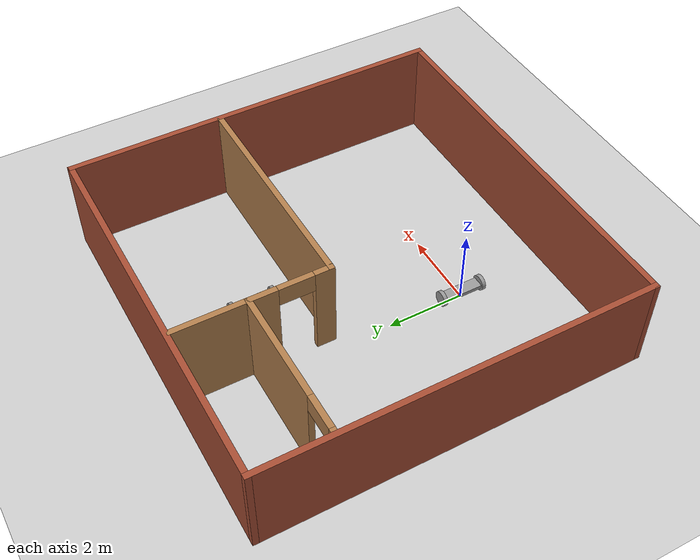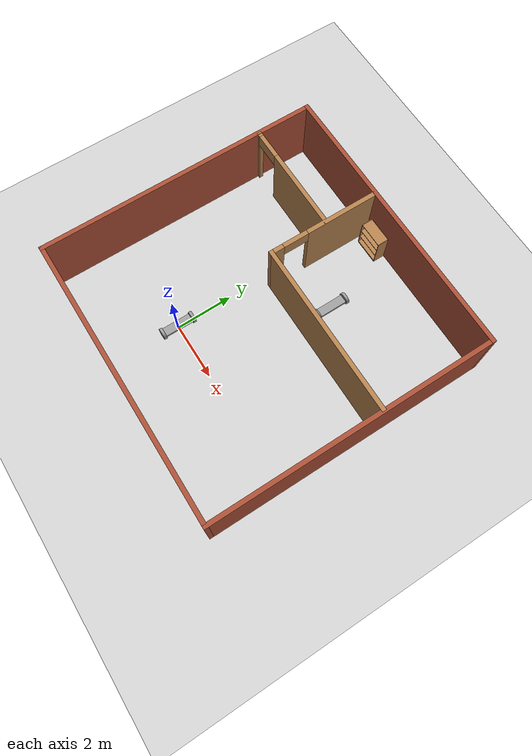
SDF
<sdf version="1.6">
 <world name="default">
  <plugin name="welcome_message" filename="libwelcome_message.so"/>
  <light name="sun" type="directional">
   <pose>0 0 10 0 -0 0</pose>
   <diffuse>0.8 0.8 0.8 1</diffuse>
   <specular>0.2 0.2 0.2 1</specular>
   <attenuation>
    <range>1000</range>
    <constant>0.9</constant>
    <linear>0.01</linear>
    <quadratic>0.001</quadratic>
   </attenuation>
   <direction>-0.5 0.1 -0.9</direction>
  </light>
  <model name="ground_plane">
   <static>1</static>
   <link name="link">
    <collision name="collision">
     <geometry><plane><normal>0 0 1</normal><size>100 100</size></plane></geometry>
     <surface><friction><ode><mu>100</mu><mu2>50</mu2></ode></friction></surface>
    </collision>
    <visual name="visual">
     <cast_shadows>0</cast_shadows>
     <geometry><plane><normal>0 0 1</normal><size>100 100</size></plane></geometry>
     <material>
      <script><uri>file://media/materials/scripts/gazebo.material</uri><name>Gazebo/Grey</name></script>
     </material>
    </visual>
   </link>
  </model>
  <gravity>0 0 -9.8</gravity>
  <magnetic_field>6e-06 2.3e-05 -4.2e-05</magnetic_field>
  <atmosphere type="adiabatic"/>
  <physics name="default_physics" default="0" type="ode">
   <max_step_size>0.001</max_step_size>
   <real_time_factor>1</real_time_factor>
   <real_time_update_rate>1000</real_time_update_rate>
  </physics>
  <scene><ambient>0.4 0.4 0.4 1</ambient><background>0.7 0.7 0.7 1</background><shadows>1</shadows></scene>
  <spherical_coordinates>
   <surface_model>EARTH_WGS84</surface_model>
   <latitude_deg>0</latitude_deg>
   <longitude_deg>0</longitude_deg>
   <elevation>0</elevation>
   <heading_deg>0</heading_deg>
  </spherical_coordinates>
  <model name="Robot">
   <link name="link_0">
    <inertial>
     <mass>1</mass>
     <inertia>
      <ixx>0.166667</ixx>
      <ixy>0</ixy>
      <ixz>0</ixz>
      <iyy>0.166667</iyy>
      <iyz>0</iyz>
      <izz>0.166667</izz>
     </inertia>
    </inertial>
    <visual name="visual">
     <geometry><box><size>0.3 1 0.1</size></box></geometry>
     <material>
      <lighting>1</lighting>
      <script><uri>file://media/materials/scripts/gazebo.material</uri><name>Gazebo/Grey</name></script>
      <shader type="pixel"><normal_map>__default__</normal_map></shader>
      <ambient>0.3 0.3 0.3 1</ambient>
      <diffuse>0.7 0.7 0.7 1</diffuse>
      <specular>0.01 0.01 0.01 1</specular>
      <emissive>0 0 0 1</emissive>
     </material>
    </visual>
    <collision name="collision">
     <geometry><box><size>0.3 1 0.1</size></box></geometry>
     <surface>
      <friction>
       <ode><mu>1</mu><mu2>1</mu2><fdir1>0 0 0</fdir1><slip1>0</slip1><slip2>0</slip2></ode>
       <torsional>
        <coefficient>1</coefficient>
        <patch_radius>0</patch_radius>
        <surface_radius>0</surface_radius>
        <use_patch_radius>1</use_patch_radius>
        <ode><slip>0</slip></ode>
       </torsional>
      </friction>
      <bounce><restitution_coefficient>0</restitution_coefficient><threshold>1e+06</threshold></bounce>
      <contact>
       <collide_without_contact>0</collide_without_contact>
       <collide_without_contact_bitmask>1</collide_without_contact_bitmask>
       <collide_bitmask>1</collide_bitmask>
       <ode>
        <soft_cfm>0</soft_cfm>
        <soft_erp>0.2</soft_erp>
        <kp>1e+13</kp>
        <kd>1</kd>
        <max_vel>0.01</max_vel>
        <min_depth>0</min_depth>
       </ode>
       <bullet>
        <split_impulse>1</split_impulse>
        <split_impulse_penetration_threshold>-0.01</split_impulse_penetration_threshold>
        <soft_cfm>0</soft_cfm>
        <soft_erp>0.2</soft_erp>
        <kp>1e+13</kp>
        <kd>1</kd>
       </bullet>
      </contact>
     </surface>
    </collision>
   </link>
   <link name="link_1">
    <pose>0 -0.550019 0 1.5707 -0 0</pose>
    <inertial>
     <mass>1</mass>
     <inertia><ixx>0.145833</ixx><ixy>0</ixy><ixz>0</ixz><iyy>0.145833</iyy><iyz>0</iyz><izz>0.125</izz></inertia>
    </inertial>
    <visual name="visual">
     <geometry><cylinder><radius>0.2</radius><length>0.1</length></cylinder></geometry>
     <material>
      <lighting>1</lighting>
      <script><uri>file://media/materials/scripts/gazebo.material</uri><name>Gazebo/Grey</name></script>
      <shader type="pixel"><normal_map>__default__</normal_map></shader>
      <ambient>0.3 0.3 0.3 1</ambient>
      <diffuse>0.7 0.7 0.7 1</diffuse>
      <specular>0.01 0.01 0.01 1</specular>
      <emissive>0 0 0 1</emissive>
     </material>
    </visual>
    <collision name="collision">
     <geometry><cylinder><radius>0.2</radius><length>0.1</length></cylinder></geometry>
     <surface>
      <friction>
       <ode><mu>1</mu><mu2>1</mu2><fdir1>0 0 0</fdir1><slip1>0</slip1><slip2>0</slip2></ode>
       <torsional>
        <coefficient>1</coefficient>
        <patch_radius>0</patch_radius>
        <surface_radius>0</surface_radius>
        <use_patch_radius>1</use_patch_radius>
        <ode><slip>0</slip></ode>
       </torsional>
      </friction>
      <bounce><restitution_coefficient>0</restitution_coefficient><threshold>1e+06</threshold></bounce>
      <contact>
       <collide_without_contact>0</collide_without_contact>
       <collide_without_contact_bitmask>1</collide_without_contact_bitmask>
       <collide_bitmask>1</collide_bitmask>
       <ode>
        <soft_cfm>0</soft_cfm>
        <soft_erp>0.2</soft_erp>
        <kp>1e+13</kp>
        <kd>1</kd>
        <max_vel>0.01</max_vel>
        <min_depth>0</min_depth>
       </ode>
       <bullet>
        <split_impulse>1</split_impulse>
        <split_impulse_penetration_threshold>-0.01</split_impulse_penetration_threshold>
        <soft_cfm>0</soft_cfm>
        <soft_erp>0.2</soft_erp>
        <kp>1e+13</kp>
        <kd>1</kd>
       </bullet>
      </contact>
     </surface>
    </collision>
   </link>
   <link name="link_1_clone">
    <pose>0 0.550019 0 1.5707 -0 0</pose>
    <inertial>
     <mass>1</mass>
     <inertia><ixx>0.145833</ixx><ixy>0</ixy><ixz>0</ixz><iyy>0.145833</iyy><iyz>0</iyz><izz>0.125</izz></inertia>
    </inertial>
    <visual name="visual">
     <geometry><cylinder><radius>0.2</radius><length>0.1</length></cylinder></geometry>
     <material>
      <lighting>1</lighting>
      <script><uri>file://media/materials/scripts/gazebo.material</uri><name>Gazebo/Grey</name></script>
      <shader type="pixel"><normal_map>__default__</normal_map></shader>
      <ambient>0.3 0.3 0.3 1</ambient>
      <diffuse>0.7 0.7 0.7 1</diffuse>
      <specular>0.01 0.01 0.01 1</specular>
      <emissive>0 0 0 1</emissive>
     </material>
    </visual>
    <collision name="collision">
     <geometry><cylinder><radius>0.2</radius><length>0.1</length></cylinder></geometry>
     <surface>
      <friction>
       <ode><mu>1</mu><mu2>1</mu2><fdir1>0 0 0</fdir1><slip1>0</slip1><slip2>0</slip2></ode>
       <torsional>
        <coefficient>1</coefficient>
        <patch_radius>0</patch_radius>
        <surface_radius>0</surface_radius>
        <use_patch_radius>1</use_patch_radius>
        <ode><slip>0</slip></ode>
       </torsional>
      </friction>
      <bounce><restitution_coefficient>0</restitution_coefficient><threshold>1e+06</threshold></bounce>
      <contact>
       <collide_without_contact>0</collide_without_contact>
       <collide_without_contact_bitmask>1</collide_without_contact_bitmask>
       <collide_bitmask>1</collide_bitmask>
       <ode>
        <soft_cfm>0</soft_cfm>
        <soft_erp>0.2</soft_erp>
        <kp>1e+13</kp>
        <kd>1</kd>
        <max_vel>0.01</max_vel>
        <min_depth>0</min_depth>
       </ode>
       <bullet>
        <split_impulse>1</split_impulse>
        <split_impulse_penetration_threshold>-0.01</split_impulse_penetration_threshold>
        <soft_cfm>0</soft_cfm>
        <soft_erp>0.2</soft_erp>
        <kp>1e+13</kp>
        <kd>1</kd>
       </bullet>
      </contact>
     </surface>
    </collision>
   </link>
   <joint name="link_0_JOINT_1" type="revolute">
    <parent>link_0</parent>
    <child>link_1</child>
    <axis>
     <xyz>0 0 1</xyz>
     <use_parent_model_frame>0</use_parent_model_frame>
     <limit>
      <lower>-1.79769e+308</lower>
      <upper>1.79769e+308</upper>
      <effort>-1</effort>
      <velocity>-1</velocity>
     </limit>
     <dynamics>
      <spring_reference>0</spring_reference>
      <spring_stiffness>0</spring_stiffness>
      <damping>0</damping>
      <friction>0</friction>
     </dynamics>
    </axis>
    <physics>
     <ode><limit><cfm>0</cfm><erp>0.2</erp></limit><suspension><cfm>0</cfm><erp>0.2</erp></suspension></ode>
    </physics>
   </joint>
   <joint name="link_0_JOINT_2" type="revolute">
    <parent>link_0</parent>
    <child>link_1_clone</child>
    <axis>
     <xyz>0 0 1</xyz>
     <use_parent_model_frame>0</use_parent_model_frame>
     <limit>
      <lower>-1.79769e+308</lower>
      <upper>1.79769e+308</upper>
      <effort>-1</effort>
      <velocity>-1</velocity>
     </limit>
     <dynamics>
      <spring_reference>0</spring_reference>
      <spring_stiffness>0</spring_stiffness>
      <damping>0</damping>
      <friction>0</friction>
     </dynamics>
    </axis>
    <physics>
     <ode><limit><cfm>0</cfm><erp>0.2</erp></limit><suspension><cfm>0</cfm><erp>0.2</erp></suspension></ode>
    </physics>
   </joint>
   <static>0</static>
   <pose>0 0 0.200005 0 -0 0</pose>
  </model>
  <model name="Building">
   <pose>1.34162 2.41675 0.002795 0 -0 0</pose>
   <link name="Wall_10">
    <pose>-0.987448 2.9137 0 0 0 -1.5708</pose>
    <visual name="Wall_10_Visual_0">
     <pose>-0.702002 0 1.25 0 -0 0</pose>
     <geometry><box><size>2.59599 0.15 2.5</size></box></geometry>
     <material>
      <script><uri>file://media/materials/scripts/gazebo.material</uri><name>Gazebo/Wood</name></script>
      <ambient>1 1 1 1</ambient>
     </material>
     <meta><layer>0</layer></meta>
    </visual>
    <collision name="Wall_10_Collision_0">
     <geometry><box><size>2.59599 0.15 2.5</size></box></geometry>
     <pose>-0.702002 0 1.25 0 -0 0</pose>
    </collision>
    <visual name="Wall_10_Visual_1">
     <pose>1.748 0 1.25 0 -0 0</pose>
     <geometry><box><size>0.504005 0.15 2.5</size></box></geometry>
     <material>
      <script><uri>file://media/materials/scripts/gazebo.material</uri><name>Gazebo/Wood</name></script>
      <ambient>1 1 1 1</ambient>
     </material>
     <meta><layer>0</layer></meta>
    </visual>
    <collision name="Wall_10_Collision_1">
     <geometry><box><size>0.504005 0.15 2.5</size></box></geometry>
     <pose>1.748 0 1.25 0 -0 0</pose>
    </collision>
    <visual name="Wall_10_Visual_2">
     <pose>1.046 0 2.25 0 -0 0</pose>
     <geometry><box><size>0.9 0.15 0.5</size></box></geometry>
     <material>
      <script><uri>file://media/materials/scripts/gazebo.material</uri><name>Gazebo/Wood</name></script>
      <ambient>1 1 1 1</ambient>
     </material>
     <meta><layer>0</layer></meta>
    </visual>
    <collision name="Wall_10_Collision_2">
     <geometry><box><size>0.9 0.15 0.5</size></box></geometry>
     <pose>1.046 0 2.25 0 -0 0</pose>
    </collision>
   </link>
   <link name="Wall_11">
    <collision name="Wall_11_Collision">
     <geometry><box><size>6 0.15 2.5</size></box></geometry>
     <pose>0 0 1.25 0 -0 0</pose>
    </collision>
    <visual name="Wall_11_Visual">
     <pose>0 0 1.25 0 -0 0</pose>
     <geometry><box><size>6 0.15 2.5</size></box></geometry>
     <material>
      <script><uri>file://media/materials/scripts/gazebo.material</uri><name>Gazebo/Wood</name></script>
      <ambient>1 1 1 1</ambient>
     </material>
     <meta><layer>0</layer></meta>
    </visual>
    <pose>1.93755 0.988703 0 0 -0 0</pose>
   </link>
   <link name="Wall_13">
    <pose>-2.92834 3.01216 0 0 -0 0</pose>
    <visual name="Wall_13_Visual_0">
     <pose>-1.91609 0 1.25 0 -0 0</pose>
     <geometry><box><size>0.167821 0.15 2.5</size></box></geometry>
     <material>
      <script><uri>file://media/materials/scripts/gazebo.material</uri><name>Gazebo/Wood</name></script>
      <ambient>1 1 1 1</ambient>
     </material>
     <meta><layer>0</layer></meta>
    </visual>
    <collision name="Wall_13_Collision_0">
     <geometry><box><size>0.167821 0.15 2.5</size></box></geometry>
     <pose>-1.91609 0 1.25 0 -0 0</pose>
    </collision>
    <visual name="Wall_13_Visual_1">
     <pose>0.53391 0 1.25 0 -0 0</pose>
     <geometry><box><size>2.93218 0.15 2.5</size></box></geometry>
     <material>
      <script><uri>file://media/materials/scripts/gazebo.material</uri><name>Gazebo/Wood</name></script>
      <ambient>1 1 1 1</ambient>
     </material>
     <meta><layer>0</layer></meta>
    </visual>
    <collision name="Wall_13_Collision_1">
     <geometry><box><size>2.93218 0.15 2.5</size></box></geometry>
     <pose>0.53391 0 1.25 0 -0 0</pose>
    </collision>
    <visual name="Wall_13_Visual_2">
     <pose>-1.38218 0 2.25 0 -0 0</pose>
     <geometry><box><size>0.9 0.15 0.5</size></box></geometry>
     <material>
      <script><uri>file://media/materials/scripts/gazebo.material</uri><name>Gazebo/Wood</name></script>
      <ambient>1 1 1 1</ambient>
     </material>
     <meta><layer>0</layer></meta>
    </visual>
    <collision name="Wall_13_Collision_2">
     <geometry><box><size>0.9 0.15 0.5</size></box></geometry>
     <pose>-1.38218 0 2.25 0 -0 0</pose>
    </collision>
   </link>
   <link name="Wall_2">
    <collision name="Wall_2_Collision">
     <geometry><box><size>10 0.15 2.5</size></box></geometry>
     <pose>0 0 1.25 0 -0 0</pose>
    </collision>
    <visual name="Wall_2_Visual">
     <pose>0 0 1.25 0 -0 0</pose>
     <geometry><box><size>10 0.15 2.5</size></box></geometry>
     <material>
      <script><uri>file://media/materials/scripts/gazebo.material</uri><name>Gazebo/Bricks</name></script>
      <ambient>0 0.333333 0.498039 1</ambient>
     </material>
     <meta><layer>0</layer></meta>
    </visual>
    <pose>0 4.93368 0 0 -0 2.9e-05</pose>
   </link>
   <link name="Wall_3">
    <collision name="Wall_3_Collision">
     <geometry><box><size>10 0.15 2.5</size></box></geometry>
     <pose>0 0 1.25 0 -0 0</pose>
    </collision>
    <visual name="Wall_3_Visual">
     <pose>0 0 1.25 0 -0 0</pose>
     <geometry><box><size>10 0.15 2.5</size></box></geometry>
     <material>
      <script><uri>file://media/materials/scripts/gazebo.material</uri><name>Gazebo/Bricks</name></script>
      <ambient>0 0.333333 0.498039 1</ambient>
     </material>
     <meta><layer>0</layer></meta>
    </visual>
    <pose>4.92497 -0.008908 0 0 0 -1.5708</pose>
   </link>
   <link name="Wall_5">
    <collision name="Wall_5_Collision">
     <geometry><box><size>10 0.15 2.5</size></box></geometry>
     <pose>0 0 1.25 0 -0 0</pose>
    </collision>
    <visual name="Wall_5_Visual">
     <pose>0 0 1.25 0 -0 0</pose>
     <geometry><box><size>10 0.15 2.5</size></box></geometry>
     <material>
      <script><uri>file://media/materials/scripts/gazebo.material</uri><name>Gazebo/Bricks</name></script>
      <ambient>0 0.333333 0.498039 1</ambient>
     </material>
     <meta><layer>0</layer></meta>
    </visual>
    <pose>0 -4.93368 0 0 -0 3.14155</pose>
   </link>
   <link name="Wall_7">
    <collision name="Wall_7_Collision">
     <geometry><box><size>10.0177 0.15 2.5</size></box></geometry>
     <pose>0 0 1.25 0 -0 0</pose>
    </collision>
    <visual name="Wall_7_Visual">
     <pose>0 0 1.25 0 -0 0</pose>
     <geometry><box><size>10.0177 0.15 2.5</size></box></geometry>
     <material>
      <script><uri>file://media/materials/scripts/gazebo.material</uri><name>Gazebo/Bricks</name></script>
      <ambient>0 0.333333 0.498039 1</ambient>
     </material>
     <meta><layer>0</layer></meta>
    </visual>
    <pose>-4.92497 4.3e-05 0 0 -0 1.5708</pose>
   </link>
   <static>1</static>
  </model>
  <model name="Robot_0">
   <link name="link_0">
    <inertial>
     <mass>1</mass>
     <inertia>
      <ixx>0.166667</ixx>
      <ixy>0</ixy>
      <ixz>0</ixz>
      <iyy>0.166667</iyy>
      <iyz>0</iyz>
      <izz>0.166667</izz>
     </inertia>
    </inertial>
    <visual name="visual">
     <geometry><box><size>0.3 1 0.1</size></box></geometry>
     <material>
      <lighting>1</lighting>
      <script><uri>file://media/materials/scripts/gazebo.material</uri><name>Gazebo/Grey</name></script>
      <shader type="pixel"><normal_map>__default__</normal_map></shader>
      <ambient>0.3 0.3 0.3 1</ambient>
      <diffuse>0.7 0.7 0.7 1</diffuse>
      <specular>0.01 0.01 0.01 1</specular>
      <emissive>0 0 0 1</emissive>
     </material>
    </visual>
    <collision name="collision">
     <geometry><box><size>0.3 1 0.1</size></box></geometry>
     <surface>
      <friction>
       <ode><mu>1</mu><mu2>1</mu2><fdir1>0 0 0</fdir1><slip1>0</slip1><slip2>0</slip2></ode>
       <torsional>
        <coefficient>1</coefficient>
        <patch_radius>0</patch_radius>
        <surface_radius>0</surface_radius>
        <use_patch_radius>1</use_patch_radius>
        <ode><slip>0</slip></ode>
       </torsional>
      </friction>
      <bounce><restitution_coefficient>0</restitution_coefficient><threshold>1e+06</threshold></bounce>
      <contact>
       <collide_without_contact>0</collide_without_contact>
       <collide_without_contact_bitmask>1</collide_without_contact_bitmask>
       <collide_bitmask>1</collide_bitmask>
       <ode>
        <soft_cfm>0</soft_cfm>
        <soft_erp>0.2</soft_erp>
        <kp>1e+13</kp>
        <kd>1</kd>
        <max_vel>0.01</max_vel>
        <min_depth>0</min_depth>
       </ode>
       <bullet>
        <split_impulse>1</split_impulse>
        <split_impulse_penetration_threshold>-0.01</split_impulse_penetration_threshold>
        <soft_cfm>0</soft_cfm>
        <soft_erp>0.2</soft_erp>
        <kp>1e+13</kp>
        <kd>1</kd>
       </bullet>
      </contact>
     </surface>
    </collision>
   </link>
   <link name="link_1">
    <pose>0 -0.550019 0 1.5707 -0 0</pose>
    <inertial>
     <mass>1</mass>
     <inertia><ixx>0.145833</ixx><ixy>0</ixy><ixz>0</ixz><iyy>0.145833</iyy><iyz>0</iyz><izz>0.125</izz></inertia>
    </inertial>
    <visual name="visual">
     <geometry><cylinder><radius>0.2</radius><length>0.1</length></cylinder></geometry>
     <material>
      <lighting>1</lighting>
      <script><uri>file://media/materials/scripts/gazebo.material</uri><name>Gazebo/Grey</name></script>
      <shader type="pixel"><normal_map>__default__</normal_map></shader>
      <ambient>0.3 0.3 0.3 1</ambient>
      <diffuse>0.7 0.7 0.7 1</diffuse>
      <specular>0.01 0.01 0.01 1</specular>
      <emissive>0 0 0 1</emissive>
     </material>
    </visual>
    <collision name="collision">
     <geometry><cylinder><radius>0.2</radius><length>0.1</length></cylinder></geometry>
     <surface>
      <friction>
       <ode><mu>1</mu><mu2>1</mu2><fdir1>0 0 0</fdir1><slip1>0</slip1><slip2>0</slip2></ode>
       <torsional>
        <coefficient>1</coefficient>
        <patch_radius>0</patch_radius>
        <surface_radius>0</surface_radius>
        <use_patch_radius>1</use_patch_radius>
        <ode><slip>0</slip></ode>
       </torsional>
      </friction>
      <bounce><restitution_coefficient>0</restitution_coefficient><threshold>1e+06</threshold></bounce>
      <contact>
       <collide_without_contact>0</collide_without_contact>
       <collide_without_contact_bitmask>1</collide_without_contact_bitmask>
       <collide_bitmask>1</collide_bitmask>
       <ode>
        <soft_cfm>0</soft_cfm>
        <soft_erp>0.2</soft_erp>
        <kp>1e+13</kp>
        <kd>1</kd>
        <max_vel>0.01</max_vel>
        <min_depth>0</min_depth>
       </ode>
       <bullet>
        <split_impulse>1</split_impulse>
        <split_impulse_penetration_threshold>-0.01</split_impulse_penetration_threshold>
        <soft_cfm>0</soft_cfm>
        <soft_erp>0.2</soft_erp>
        <kp>1e+13</kp>
        <kd>1</kd>
       </bullet>
      </contact>
     </surface>
    </collision>
   </link>
   <link name="link_1_clone">
    <pose>0 0.550019 0 1.5707 -0 0</pose>
    <inertial>
     <mass>1</mass>
     <inertia><ixx>0.145833</ixx><ixy>0</ixy><ixz>0</ixz><iyy>0.145833</iyy><iyz>0</iyz><izz>0.125</izz></inertia>
    </inertial>
    <visual name="visual">
     <geometry><cylinder><radius>0.2</radius><length>0.1</length></cylinder></geometry>
     <material>
      <lighting>1</lighting>
      <script><uri>file://media/materials/scripts/gazebo.material</uri><name>Gazebo/Grey</name></script>
      <shader type="pixel"><normal_map>__default__</normal_map></shader>
      <ambient>0.3 0.3 0.3 1</ambient>
      <diffuse>0.7 0.7 0.7 1</diffuse>
      <specular>0.01 0.01 0.01 1</specular>
      <emissive>0 0 0 1</emissive>
     </material>
    </visual>
    <collision name="collision">
     <geometry><cylinder><radius>0.2</radius><length>0.1</length></cylinder></geometry>
     <surface>
      <friction>
       <ode><mu>1</mu><mu2>1</mu2><fdir1>0 0 0</fdir1><slip1>0</slip1><slip2>0</slip2></ode>
       <torsional>
        <coefficient>1</coefficient>
        <patch_radius>0</patch_radius>
        <surface_radius>0</surface_radius>
        <use_patch_radius>1</use_patch_radius>
        <ode><slip>0</slip></ode>
       </torsional>
      </friction>
      <bounce><restitution_coefficient>0</restitution_coefficient><threshold>1e+06</threshold></bounce>
      <contact>
       <collide_without_contact>0</collide_without_contact>
       <collide_without_contact_bitmask>1</collide_without_contact_bitmask>
       <collide_bitmask>1</collide_bitmask>
       <ode>
        <soft_cfm>0</soft_cfm>
        <soft_erp>0.2</soft_erp>
        <kp>1e+13</kp>
        <kd>1</kd>
        <max_vel>0.01</max_vel>
        <min_depth>0</min_depth>
       </ode>
       <bullet>
        <split_impulse>1</split_impulse>
        <split_impulse_penetration_threshold>-0.01</split_impulse_penetration_threshold>
        <soft_cfm>0</soft_cfm>
        <soft_erp>0.2</soft_erp>
        <kp>1e+13</kp>
        <kd>1</kd>
       </bullet>
      </contact>
     </surface>
    </collision>
   </link>
   <joint name="link_0_JOINT_1" type="revolute">
    <parent>link_0</parent>
    <child>link_1</child>
    <axis>
     <xyz>0 0 1</xyz>
     <use_parent_model_frame>0</use_parent_model_frame>
     <limit>
      <lower>-1.79769e+308</lower>
      <upper>1.79769e+308</upper>
      <effort>-1</effort>
      <velocity>-1</velocity>
     </limit>
     <dynamics>
      <spring_reference>0</spring_reference>
      <spring_stiffness>0</spring_stiffness>
      <damping>0</damping>
      <friction>0</friction>
     </dynamics>
    </axis>
    <physics>
     <ode><limit><cfm>0</cfm><erp>0.2</erp></limit><suspension><cfm>0</cfm><erp>0.2</erp></suspension></ode>
    </physics>
   </joint>
   <joint name="link_0_JOINT_2" type="revolute">
    <parent>link_0</parent>
    <child>link_1_clone</child>
    <axis>
     <xyz>0 0 1</xyz>
     <use_parent_model_frame>0</use_parent_model_frame>
     <limit>
      <lower>-1.79769e+308</lower>
      <upper>1.79769e+308</upper>
      <effort>-1</effort>
      <velocity>-1</velocity>
     </limit>
     <dynamics>
      <spring_reference>0</spring_reference>
      <spring_stiffness>0</spring_stiffness>
      <damping>0</damping>
      <friction>0</friction>
     </dynamics>
    </axis>
    <physics>
     <ode><limit><cfm>0</cfm><erp>0.2</erp></limit><suspension><cfm>0</cfm><erp>0.2</erp></suspension></ode>
    </physics>
   </joint>
   <static>0</static>
   <pose>2.14274 4.62439 0.200002 4e-06 -0.033458 0.002317</pose>
  </model>
  <model name="bookshelf">
   <static>1</static>
   <link name="link">
    <inertial><mass>1</mass></inertial>
    <collision name="back">
     <pose>0 0.005 0.6 0 -0 0</pose>
     <geometry><box><size>0.9 0.01 1.2</size></box></geometry>
    </collision>
    <visual name="visual1">
     <pose>0 0.005 0.6 0 -0 0</pose>
     <geometry><box><size>0.9 0.01 1.2</size></box></geometry>
     <material>
      <script><uri>file://media/materials/scripts/gazebo.material</uri><name>Gazebo/Wood</name></script>
     </material>
    </visual>
    <collision name="left_side">
     <pose>0.45 -0.195 0.6 0 -0 0</pose>
     <geometry><box><size>0.02 0.4 1.2</size></box></geometry>
    </collision>
    <visual name="visual2">
     <pose>0.45 -0.195 0.6 0 -0 0</pose>
     <geometry><box><size>0.02 0.4 1.2</size></box></geometry>
     <material>
      <script><uri>file://media/materials/scripts/gazebo.material</uri><name>Gazebo/Wood</name></script>
     </material>
    </visual>
    <collision name="right_side">
     <pose>-0.45 -0.195 0.6 0 -0 0</pose>
     <geometry><box><size>0.02 0.4 1.2</size></box></geometry>
    </collision>
    <visual name="visual3">
     <pose>-0.45 -0.195 0.6 0 -0 0</pose>
     <geometry><box><size>0.02 0.4 1.2</size></box></geometry>
     <material>
      <script><uri>file://media/materials/scripts/gazebo.material</uri><name>Gazebo/Wood</name></script>
     </material>
    </visual>
    <collision name="bottom">
     <pose>0 -0.195 0.03 0 -0 0</pose>
     <geometry><box><size>0.88 0.4 0.06</size></box></geometry>
    </collision>
    <visual name="visual4">
     <pose>0 -0.195 0.03 0 -0 0</pose>
     <geometry><box><size>0.88 0.4 0.06</size></box></geometry>
     <material>
      <script><uri>file://media/materials/scripts/gazebo.material</uri><name>Gazebo/Wood</name></script>
     </material>
    </visual>
    <collision name="top">
     <pose>0 -0.195 1.19 0 -0 0</pose>
     <geometry><box><size>0.88 0.4 0.02</size></box></geometry>
    </collision>
    <visual name="visual5">
     <pose>0 -0.195 1.19 0 -0 0</pose>
     <geometry><box><size>0.88 0.4 0.02</size></box></geometry>
     <material>
      <script><uri>file://media/materials/scripts/gazebo.material</uri><name>Gazebo/Wood</name></script>
     </material>
    </visual>
    <collision name="low_shelf">
     <pose>0 -0.195 0.43 0 -0 0</pose>
     <geometry><box><size>0.88 0.4 0.02</size></box></geometry>
    </collision>
    <visual name="visual6">
     <pose>0 -0.195 0.43 0 -0 0</pose>
     <geometry><box><size>0.88 0.4 0.02</size></box></geometry>
     <material>
      <script><uri>file://media/materials/scripts/gazebo.material</uri><name>Gazebo/Wood</name></script>
     </material>
    </visual>
    <collision name="high_shelf">
     <pose>0 -0.195 0.8 0 -0 0</pose>
     <geometry><box><size>0.88 0.4 0.02</size></box></geometry>
    </collision>
    <visual name="visual7">
     <pose>0 -0.195 0.8 0 -0 0</pose>
     <geometry><box><size>0.88 0.4 0.02</size></box></geometry>
     <material>
      <script><uri>file://media/materials/scripts/gazebo.material</uri><name>Gazebo/Wood</name></script>
     </material>
    </visual>
   </link>
   <pose>1.035 7.25393 0 0 -0 0</pose>
  </model>
 </world>
</sdf>
